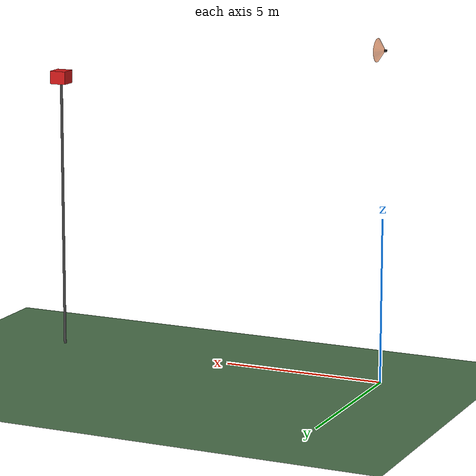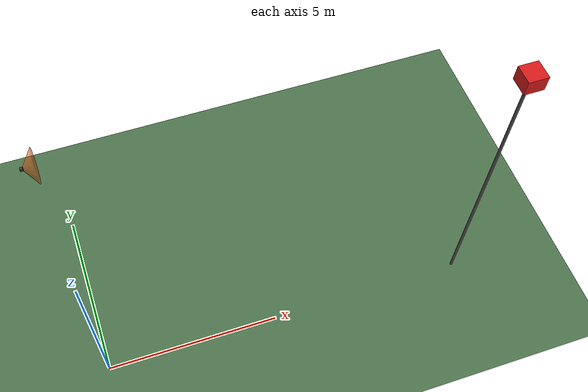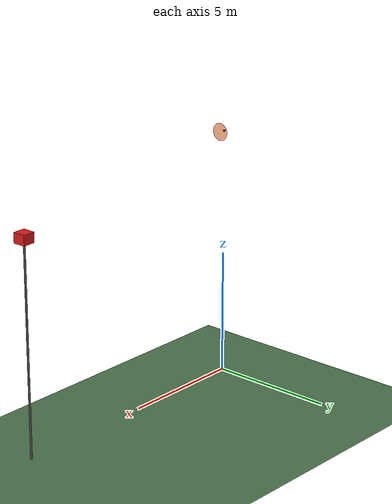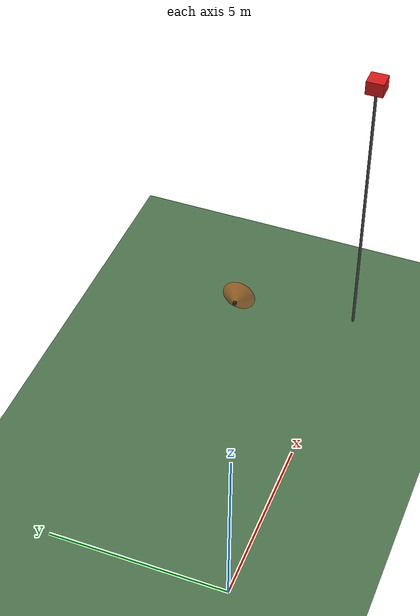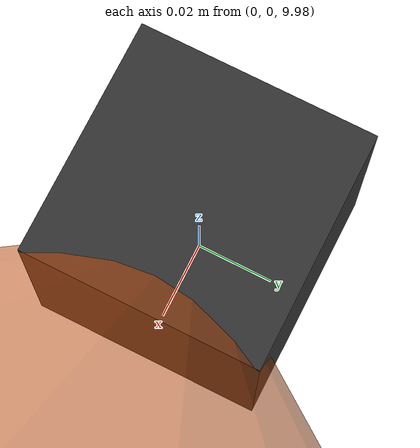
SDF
<?xml version="1.0" ?>
<sdf version="1.9">
  <world name="net_capture_test">
    <physics name="1ms" type="ignore">
      <max_step_size>0.001</max_step_size>
      <real_time_factor>1.0</real_time_factor>
    </physics>

    <plugin filename="gz-sim-physics-system"
      name="gz::sim::systems::Physics">
    </plugin>
    <plugin filename="gz-sim-user-commands-system"
      name="gz::sim::systems::UserCommands">
    </plugin>
    <plugin filename="gz-sim-scene-broadcaster-system"
      name="gz::sim::systems::SceneBroadcaster">
    </plugin>
    <plugin filename="gz-sim-contact-system"
      name="gz::sim::systems::Contact">
    </plugin>
    <plugin filename="gz-sim-sensors-system"
      name="gz::sim::systems::Sensors">
      <render_engine>ogre2</render_engine>
    </plugin>

    <!-- Yakalama: temas eden hedefi aga kilitler -->
    <plugin filename="NetCapturePlugin" name="avci::NetCapturePlugin">
      <net_model>net_cone</net_model>
      <net_link>net_link</net_link>
      <target_model>target_box</target_model>
      <capture_topic>/net/captured</capture_topic>
      <min_speed>1.0</min_speed>
    </plugin>

    <gravity>0 0 -9.8</gravity>
    <atmosphere type="adiabatic"/>

    <scene>
      <ambient>0.5 0.5 0.5</ambient>
      <background>0.6 0.7 0.9</background>
      <shadows>false</shadows>
    </scene>

    <light type="directional" name="sun">
      <cast_shadows>false</cast_shadows>
      <pose>0 0 20 0 0 0</pose>
      <diffuse>0.9 0.9 0.9 1</diffuse>
      <direction>-0.5 0.1 -0.9</direction>
    </light>

    <model name="ground_plane">
      <static>true</static>
      <link name="link">
        <collision name="collision">
          <geometry><plane><normal>0 0 1</normal><size>500 500</size></plane></geometry>
        </collision>
        <visual name="visual">
          <geometry><plane><normal>0 0 1</normal><size>500 500</size></plane></geometry>
          <material>
            <ambient>0.3 0.45 0.3 1</ambient>
            <diffuse>0.3 0.45 0.3 1</diffuse>
          </material>
        </visual>
      </link>
    </model>

    <!-- Ag askisi + firlatici (net_ballistics.sdf ile ayni) -->
    <model name="net_anchor">
      <static>true</static>
      <pose>0 0 10 0 0 0</pose>
      <link name="anchor_link">
        <visual name="anchor_visual">
          <geometry><box><size>0.06 0.06 0.06</size></box></geometry>
          <material><ambient>0.2 0.2 0.2 1</ambient><diffuse>0.2 0.2 0.2 1</diffuse></material>
        </visual>
      </link>

      <plugin filename="NetLauncherPlugin" name="avci::NetLauncherPlugin">
        <muzzle_link>anchor_link</muzzle_link>
        <net_model>net_cone</net_model>
        <net_link>net_link</net_link>
        <fire_topic>/bullet_net_interceptor/net/fire</fire_topic>
        <muzzle_speed>20.0</muzzle_speed>
        <launch_axis>1 0 0</launch_axis>
      </plugin>
    </model>

    <include>
      <uri>model://net_cone</uri>
      <name>net_cone</name>
      <pose>0 0 10 0 0 0</pose>
    </include>

    <!--
      Hedef, OLCULEN yorunge uzerinde:
      20 m/s tilt 0 atisinda ag x=10.74 m'de z=8.54 m'den geciyor
      (docs/bench_raw/traj_h20_a0.csv). Kutu 0.5x0.5x0.4 -> z 8.34..8.74.
    -->

    <!-- Hedef diregi (target_box artik dinamik) -->
    <model name="target_pole">
      <static>true</static>
      <pose>10.7 0 0 0 0 0</pose>
      <link name="link">
        <visual name="visual">
          <pose>0 0 4.17 0 0 0</pose>
          <geometry><cylinder><radius>0.04</radius><length>8.34</length></cylinder></geometry>
          <material><ambient>0.3 0.3 0.3 1</ambient><diffuse>0.3 0.3 0.3 1</diffuse></material>
        </visual>
        <collision name="collision">
          <pose>0 0 4.17 0 0 0</pose>
          <geometry><cylinder><radius>0.04</radius><length>8.34</length></cylinder></geometry>
        </collision>
      </link>
    </model>

    <include>
      <uri>model://target_box</uri>
      <name>target_box</name>
      <pose>10.7 0 8.54 0 0 0</pose>
    </include>

    <!-- Yakalama anini goruntuleyen kamera -->
    <model name="capture_camera">
      <static>true</static>
      <!-- Ag x=0..10.7 arasinda ucuyor, z~10..8.5; yandan bakis -->
      <pose>5.5 -13.0 9.2 0 0.02 1.5708</pose>
      <link name="link">
        <sensor name="cam" type="camera">
          <always_on>1</always_on>
          <update_rate>30</update_rate>
          <topic>/capture_test/view</topic>
          <camera>
            <horizontal_fov>1.1</horizontal_fov>
            <image><width>1440</width><height>810</height><format>R8G8B8</format></image>
            <clip><near>0.05</near><far>200</far></clip>
          </camera>
        </sensor>
      </link>
    </model>

  </world>
</sdf>

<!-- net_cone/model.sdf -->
<sdf version="1.9">
  <model name="net_cone">

    <link name="net_link">
      <inertial>
        <mass>0.30</mass>
        <!-- Ince kabuk koni yaklasimi; tam dogru degil ama menzil/balistik
             icin yeterli. Agirlik merkezi agza dogru kayik. -->
        <pose>0.15 0 0 0 0 0</pose>
        <inertia>
          <ixx>0.0012</ixx>
          <ixy>0</ixy>
          <ixz>0</ixz>
          <iyy>0.0009</iyy>
          <iyz>0</iyz>
          <izz>0.0009</izz>
        </inertia>
      </inertial>

      <collision name="net_collision">
        <pose degrees="true">0.125 0 0 0 -90 0</pose>
        <geometry>
          <cone>
            <radius>0.35</radius>
            <length>0.25</length>
          </cone>
        </geometry>
        <surface>
          <contact>
            <ode>
              <!-- Ag yumusak: hedefi sekmeden yakalamali -->
              <max_vel>0.1</max_vel>
              <min_depth>0.005</min_depth>
            </ode>
          </contact>
          <friction>
            <ode>
              <mu>1.5</mu>
              <mu2>1.5</mu2>
            </ode>
          </friction>
        </surface>
      </collision>

      <visual name="net_visual">
        <pose degrees="true">0.125 0 0 0 -90 0</pose>
        <geometry>
          <cone>
            <radius>0.35</radius>
            <length>0.25</length>
          </cone>
        </geometry>
        <material>
          <ambient>0.9 0.35 0.05 0.55</ambient>
          <diffuse>0.9 0.35 0.05 0.55</diffuse>
          <specular>0.1 0.1 0.1 1</specular>
        </material>
        <transparency>0.45</transparency>
      </visual>

      <!-- Yakalama tespiti: NetCapturePlugin bu sensoru dinler -->
      <sensor name="net_contact" type="contact">
        <always_on>true</always_on>
        <!-- Fizik adimiyla ayni hiz: 20 m/s'de 200 Hz ornekleme (5 ms = 10 cm)
             30 cm'lik hedefte temasi kacirabiliyordu. -->
        <update_rate>1000</update_rate>
        <contact>
          <collision>net_collision</collision>
        </contact>
      </sensor>
    </link>

    <plugin filename="gz-sim-lift-drag-system"
      name="gz::sim::systems::LiftDrag">
      <a0>0.0</a0>
      <cla>0.0</cla>
      <cda>0.30</cda>
      <cma>0.0</cma>
      <alpha_stall>1.5708</alpha_stall>
      <cla_stall>0.0</cla_stall>
      <cda_stall>0.30</cda_stall>
      <cma_stall>0.0</cma_stall>
      <cp>0.15 0 0</cp>
      <area>0.10</area>
      <air_density>1.2041</air_density>
      <forward>1 0 0</forward>
      <upward>0 0 1</upward>
      <link_name>net_link</link_name>
    </plugin>

  </model>
</sdf>

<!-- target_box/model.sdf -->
<sdf version="1.9">
  <model name="target_box">
    <link name="target_link">
      <inertial>
        <mass>0.7</mass>
        <!-- 0.5 x 0.5 x 0.4 m kutu icin: I = m(b^2+c^2)/12 -->
        <inertia>
          <ixx>0.0240</ixx>
          <ixy>0</ixy>
          <ixz>0</ixz>
          <iyy>0.0240</iyy>
          <iyz>0</iyz>
          <izz>0.0292</izz>
        </inertia>
      </inertial>

      <collision name="target_collision">
        <geometry><box><size>0.5 0.5 0.4</size></box></geometry>
        <surface>
          <friction><ode><mu>0.8</mu><mu2>0.8</mu2></ode></friction>
        </surface>
      </collision>

      <visual name="target_visual">
        <geometry><box><size>0.5 0.5 0.4</size></box></geometry>
        <material>
          <ambient>0.85 0.1 0.1 1</ambient>
          <diffuse>0.85 0.1 0.1 1</diffuse>
        </material>
      </visual>

      <!-- Karsi taraftan da temas gorulebilsin -->
      <sensor name="target_contact" type="contact">
        <always_on>true</always_on>
        <update_rate>1000</update_rate>
        <contact><collision>target_collision</collision></contact>
      </sensor>
    </link>
  </model>
</sdf>
